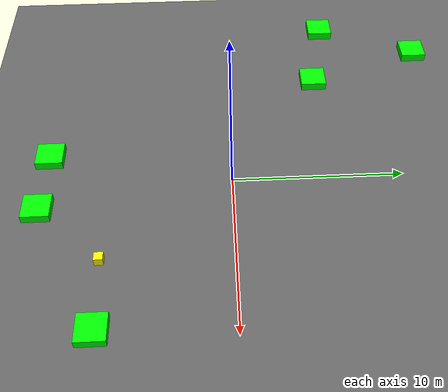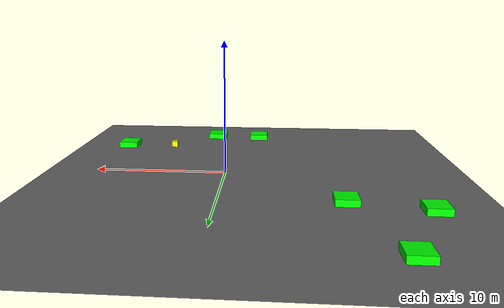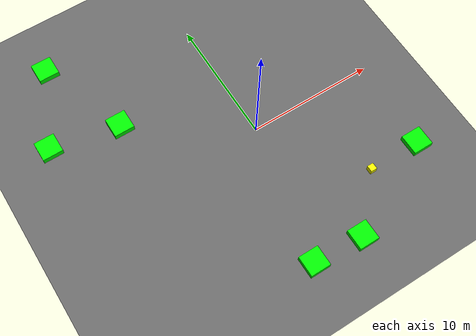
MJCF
<mujoco model="baseline_lvl4_obs6_seed3000">
    <compiler angle="degree" coordinate="local" inertiafromgeom="true"/>
    <option integrator="RK4" timestep="0.01"/>

    <asset>
        <texture builtin="gradient" height="100" rgb1="0.6 0.8 1" rgb2="0 0 0" type="skybox" width="100"/>
        <texture name="floor_texture" type="2d" builtin="checker" width="100" height="100" rgb1="0 0 0" rgb2="0.8 0.8 0.8"/>
        <material name="MatPlane" reflectance="0.5" shininess="1" specular="1" texrepeat="10 10" texture="floor_texture"/>
    </asset>

    <!-- Excluding the contact between the agent and the goal, and the agent and the floor -->
    <contact>
        <exclude body1="agent" body2="goal"/>
        <exclude body1 = "agent" body2 = "floor"/>
    </contact>

    <extension>
        <plugin plugin = "mujoco.pid">
            <instance name = "pid1">
                <config key="kp" value="2"/>
                <config key="ki" value="0"/>
                <config key="kd" value="55"/>
            </instance>
        </plugin>
    </extension>

    <worldbody>
        <light cutoff="100" diffuse="1 1 1" dir="-0 0 -1.3" directional="true" exponent="1" pos="0 0 1.3" specular=".1 .1 .1"/>
        <body name="floor" pos="0 0 0">
            <geom name="floor_geom" type="plane" size="20 20 0.1" material="MatPlane"/>
        </body>

        <!-- Goal -->
        <body name="goal" pos="12.000 -12.000 0">
            <geom name="goal_geom" type="plane" size="0.5 0.5 1" pos="0 0 0" rgba="1 0 0 1"/>
        </body>

        <!-- Agent -->
        <body name="agent" pos="5.333 -7.209 0.25">
            <joint name="j1" type="slide" axis ="1 0 0 "/>
            <joint name="j2" type="slide" axis ="0 1 0 "/>
            <geom name="agent_geom" type="box" size="0.25 0.25 0.250" rgba="1 1 0 1"/>
        </body>

    <body name="obstacle1" pos="-8.426 5.659 0.250">
      <geom name="obstacle1_geom" type="box"
            size="0.800 0.800 0.250"
            rgba="0 1 0 1"/>
    </body>
    <body name="obstacle2" pos="-13.794 6.715 0.250">
      <geom name="obstacle2_geom" type="box"
            size="0.800 0.800 0.250"
            rgba="0 1 0 1"/>
    </body>
    <body name="obstacle3" pos="-2.201 -10.731 0.250">
      <geom name="obstacle3_geom" type="box"
            size="0.800 0.800 0.250"
            rgba="0 1 0 1"/>
    </body>
    <body name="obstacle4" pos="1.756 -10.961 0.250">
      <geom name="obstacle4_geom" type="box"
            size="0.800 0.800 0.250"
            rgba="0 1 0 1"/>
    </body>
    <body name="obstacle5" pos="-11.060 12.825 0.250">
      <geom name="obstacle5_geom" type="box"
            size="0.800 0.800 0.250"
            rgba="0 1 0 1"/>
    </body>
    <body name="obstacle6" pos="9.465 -7.188 0.250">
      <geom name="obstacle6_geom" type="box"
            size="0.800 0.800 0.250"
            rgba="0 1 0 1"/>
    </body>
    </worldbody>

    <actuator>
        <plugin joint="j1" plugin="mujoco.pid" instance="pid1" />
        <plugin joint="j2" plugin="mujoco.pid" instance="pid1"/>
    </actuator>

  <sensor>
    <distance name="dist1" geom1="agent_geom" geom2="obstacle1_geom" cutoff="1.5"/>
    <distance name="dist2" geom1="agent_geom" geom2="obstacle2_geom" cutoff="1.5"/>
    <distance name="dist3" geom1="agent_geom" geom2="obstacle3_geom" cutoff="1.5"/>
    <distance name="dist4" geom1="agent_geom" geom2="obstacle4_geom" cutoff="1.5"/>
    <distance name="dist5" geom1="agent_geom" geom2="obstacle5_geom" cutoff="1.5"/>
    <distance name="dist6" geom1="agent_geom" geom2="obstacle6_geom" cutoff="1.5"/>
  </sensor>
</mujoco>
